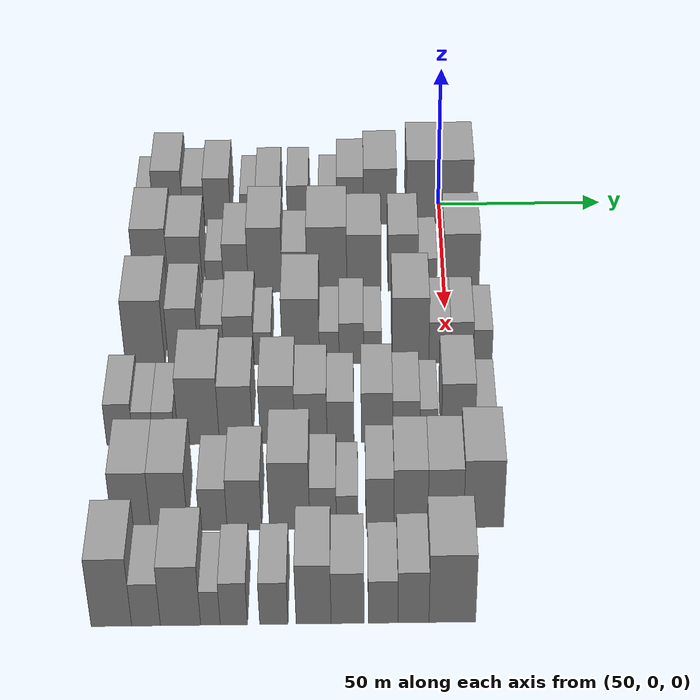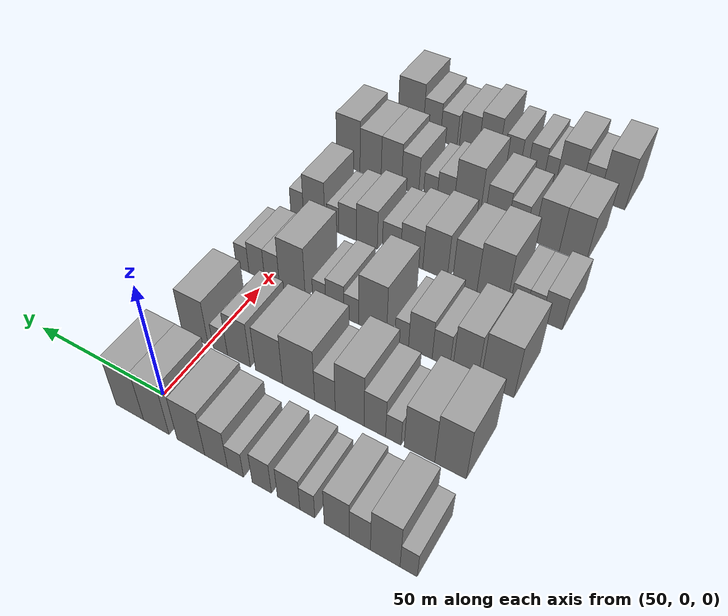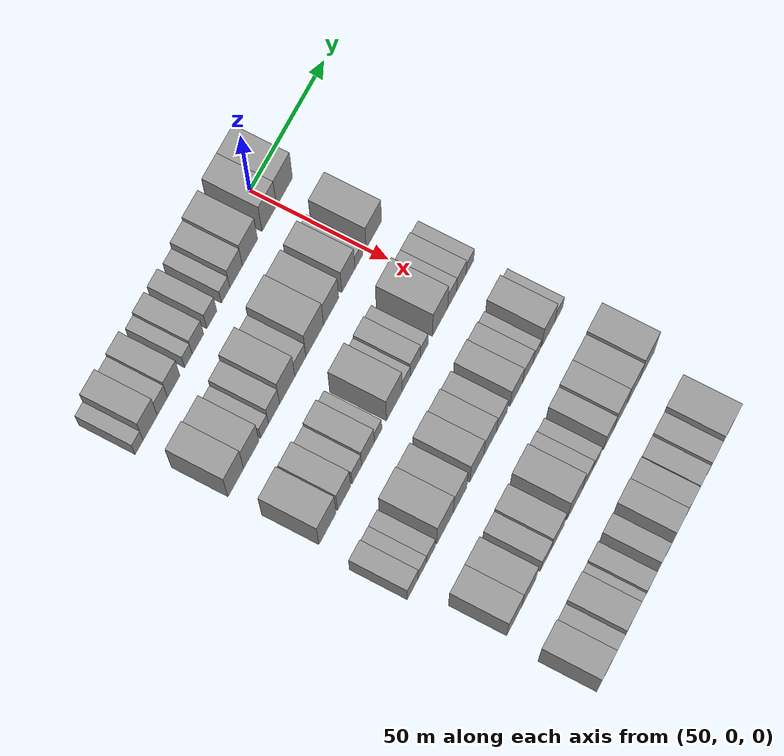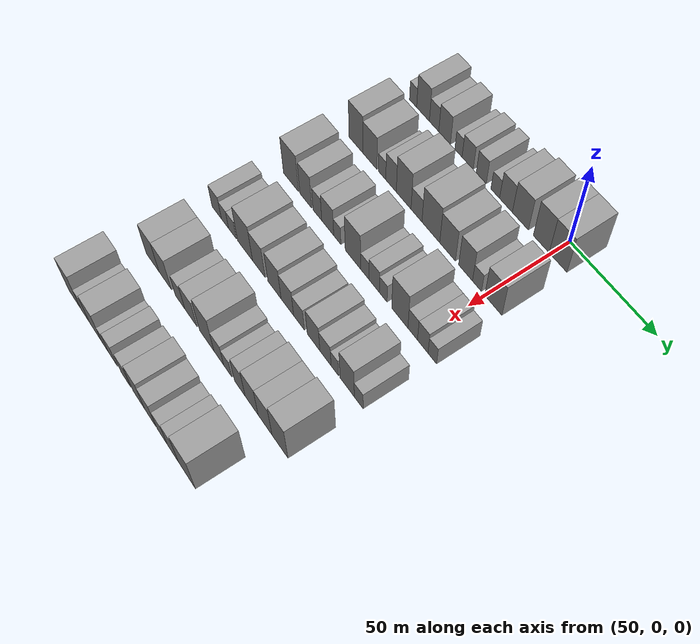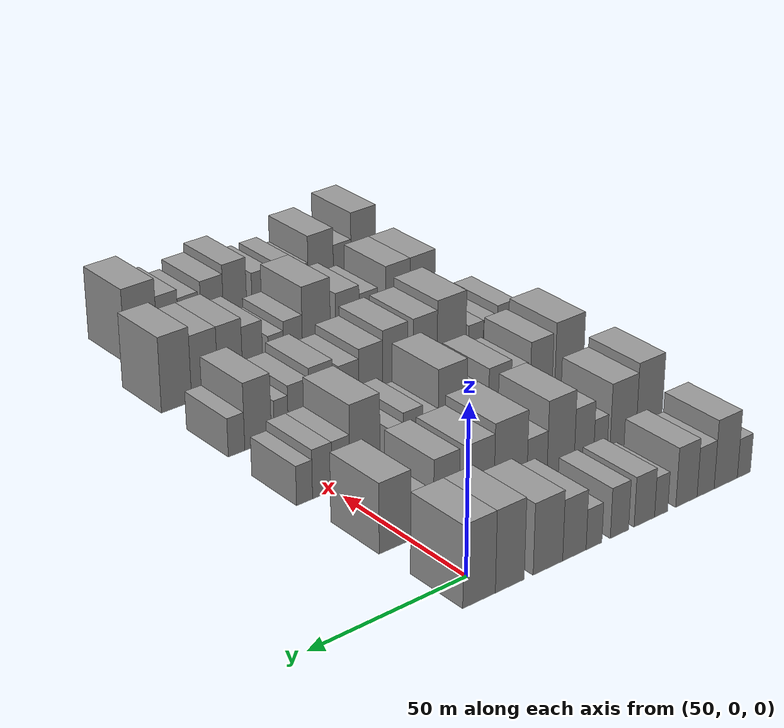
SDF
<sdf version="1.6">
 <world name="default">
  <model name="building_49">
   <static>1</static>
   <pose>50.0000 -90.0845 0 0.000000 0.000000 0.000000</pose>
   <link name="link">
    <pose>0 0 6.00 0 0 0</pose>
    <collision name="collision"><geometry><box><size>20.0000 5.1245 12.0000</size></box></geometry></collision>
    <visual name="visual">
     <cast_shadows>0</cast_shadows>
     <geometry><box><size>20.0000 5.1245 12.0000</size></box></geometry>
     <material>
      <script>
       <uri>model://grey_wall/materials/scripts</uri>
       <uri>model://grey_wall/materials/textures</uri>
       <name>vrc/grey_wall</name>
      </script>
     </material>
    </visual>
   </link>
  </model>
  <model name="building_50">
   <static>1</static>
   <pose>50.0000 -83.0336 0 0.000000 0.000000 0.000000</pose>
   <link name="link">
    <pose>0 0 10.50 0 0 0</pose>
    <collision name="collision"><geometry><box><size>20.0000 8.9772 21.0000</size></box></geometry></collision>
    <visual name="visual">
     <cast_shadows>0</cast_shadows>
     <geometry><box><size>20.0000 8.9772 21.0000</size></box></geometry>
     <material>
      <script>
       <uri>model://grey_wall/materials/scripts</uri>
       <uri>model://grey_wall/materials/textures</uri>
       <name>vrc/grey_wall</name>
      </script>
     </material>
    </visual>
   </link>
  </model>
  <model name="building_51">
   <static>1</static>
   <pose>50.0000 -75.2911 0 0.000000 0.000000 0.000000</pose>
   <link name="link">
    <pose>0 0 7.50 0 0 0</pose>
    <collision name="collision"><geometry><box><size>20.0000 6.5078 15.0000</size></box></geometry></collision>
    <visual name="visual">
     <cast_shadows>0</cast_shadows>
     <geometry><box><size>20.0000 6.5078 15.0000</size></box></geometry>
     <material>
      <script>
       <uri>model://grey_wall/materials/scripts</uri>
       <uri>model://grey_wall/materials/textures</uri>
       <name>vrc/grey_wall</name>
      </script>
     </material>
    </visual>
   </link>
  </model>
  <model name="building_52">
   <static>1</static>
   <pose>50.0000 -68.0344 0 0.000000 0.000000 0.000000</pose>
   <link name="link">
    <pose>0 0 9.00 0 0 0</pose>
    <collision name="collision"><geometry><box><size>20.0000 8.0055 18.0000</size></box></geometry></collision>
    <visual name="visual">
     <cast_shadows>0</cast_shadows>
     <geometry><box><size>20.0000 8.0055 18.0000</size></box></geometry>
     <material>
      <script>
       <uri>model://grey_wall/materials/scripts</uri>
       <uri>model://grey_wall/materials/textures</uri>
       <name>vrc/grey_wall</name>
      </script>
     </material>
    </visual>
   </link>
  </model>
  <model name="building_53">
   <static>1</static>
   <pose>50.0000 -58.5989 0 0.000000 0.000000 0.000000</pose>
   <link name="link">
    <pose>0 0 6.00 0 0 0</pose>
    <collision name="collision"><geometry><box><size>20.0000 4.8654 12.0000</size></box></geometry></collision>
    <visual name="visual">
     <cast_shadows>0</cast_shadows>
     <geometry><box><size>20.0000 4.8654 12.0000</size></box></geometry>
     <material>
      <script>
       <uri>model://grey_wall/materials/scripts</uri>
       <uri>model://grey_wall/materials/textures</uri>
       <name>vrc/grey_wall</name>
      </script>
     </material>
    </visual>
   </link>
  </model>
  <model name="building_54">
   <static>1</static>
   <pose>50.0000 -52.4347 0 0.000000 0.000000 0.000000</pose>
   <link name="link">
    <pose>0 0 7.50 0 0 0</pose>
    <collision name="collision"><geometry><box><size>20.0000 7.4630 15.0000</size></box></geometry></collision>
    <visual name="visual">
     <cast_shadows>0</cast_shadows>
     <geometry><box><size>20.0000 7.4630 15.0000</size></box></geometry>
     <material>
      <script>
       <uri>model://grey_wall/materials/scripts</uri>
       <uri>model://grey_wall/materials/textures</uri>
       <name>vrc/grey_wall</name>
      </script>
     </material>
    </visual>
   </link>
  </model>
  <model name="building_55">
   <static>1</static>
   <pose>50.0000 -43.4236 0 0.000000 0.000000 0.000000</pose>
   <link name="link">
    <pose>0 0 7.50 0 0 0</pose>
    <collision name="collision"><geometry><box><size>20.0000 6.5594 15.0000</size></box></geometry></collision>
    <visual name="visual">
     <cast_shadows>0</cast_shadows>
     <geometry><box><size>20.0000 6.5594 15.0000</size></box></geometry>
     <material>
      <script>
       <uri>model://grey_wall/materials/scripts</uri>
       <uri>model://grey_wall/materials/textures</uri>
       <name>vrc/grey_wall</name>
      </script>
     </material>
    </visual>
   </link>
  </model>
  <model name="building_56">
   <static>1</static>
   <pose>50.0000 -34.3570 0 0.000000 0.000000 0.000000</pose>
   <link name="link">
    <pose>0 0 6.00 0 0 0</pose>
    <collision name="collision"><geometry><box><size>20.0000 5.5738 12.0000</size></box></geometry></collision>
    <visual name="visual">
     <cast_shadows>0</cast_shadows>
     <geometry><box><size>20.0000 5.5738 12.0000</size></box></geometry>
     <material>
      <script>
       <uri>model://grey_wall/materials/scripts</uri>
       <uri>model://grey_wall/materials/textures</uri>
       <name>vrc/grey_wall</name>
      </script>
     </material>
    </visual>
   </link>
  </model>
  <model name="building_57">
   <static>1</static>
   <pose>50.0000 -27.4977 0 0.000000 0.000000 0.000000</pose>
   <link name="link">
    <pose>0 0 9.00 0 0 0</pose>
    <collision name="collision"><geometry><box><size>20.0000 8.1449 18.0000</size></box></geometry></collision>
    <visual name="visual">
     <cast_shadows>0</cast_shadows>
     <geometry><box><size>20.0000 8.1449 18.0000</size></box></geometry>
     <material>
      <script>
       <uri>model://grey_wall/materials/scripts</uri>
       <uri>model://grey_wall/materials/textures</uri>
       <name>vrc/grey_wall</name>
      </script>
     </material>
    </visual>
   </link>
  </model>
  <model name="building_58">
   <static>1</static>
   <pose>50.0000 -18.3838 0 0.000000 0.000000 0.000000</pose>
   <link name="link">
    <pose>0 0 10.50 0 0 0</pose>
    <collision name="collision"><geometry><box><size>20.0000 10.0829 21.0000</size></box></geometry></collision>
    <visual name="visual">
     <cast_shadows>0</cast_shadows>
     <geometry><box><size>20.0000 10.0829 21.0000</size></box></geometry>
     <material>
      <script>
       <uri>model://grey_wall/materials/scripts</uri>
       <uri>model://grey_wall/materials/textures</uri>
       <name>vrc/grey_wall</name>
      </script>
     </material>
    </visual>
   </link>
  </model>
  <model name="building_59">
   <static>1</static>
   <pose>50.0000 -5.5306 0 0.000000 0.000000 0.000000</pose>
   <link name="link">
    <pose>0 0 12.00 0 0 0</pose>
    <collision name="collision"><geometry><box><size>20.0000 9.6235 24.0000</size></box></geometry></collision>
    <visual name="visual">
     <cast_shadows>0</cast_shadows>
     <geometry><box><size>20.0000 9.6235 24.0000</size></box></geometry>
     <material>
      <script>
       <uri>model://grey_wall/materials/scripts</uri>
       <uri>model://grey_wall/materials/textures</uri>
       <name>vrc/grey_wall</name>
      </script>
     </material>
    </visual>
   </link>
  </model>
  <model name="building_60">
   <static>1</static>
   <pose>50.0000 4.6134 0 0.000000 0.000000 0.000000</pose>
   <link name="link">
    <pose>0 0 12.00 0 0 0</pose>
    <collision name="collision"><geometry><box><size>20.0000 10.6645 24.0000</size></box></geometry></collision>
    <visual name="visual">
     <cast_shadows>0</cast_shadows>
     <geometry><box><size>20.0000 10.6645 24.0000</size></box></geometry>
     <material>
      <script>
       <uri>model://grey_wall/materials/scripts</uri>
       <uri>model://grey_wall/materials/textures</uri>
       <name>vrc/grey_wall</name>
      </script>
     </material>
    </visual>
   </link>
  </model>
  <model name="building_172">
   <static>1</static>
   <pose>82.0000 -85.9453 0 0.000000 0.000000 0.000000</pose>
   <link name="link">
    <pose>0 0 12.00 0 0 0</pose>
    <collision name="collision"><geometry><box><size>20.0000 10.0226 24.0000</size></box></geometry></collision>
    <visual name="visual">
     <cast_shadows>0</cast_shadows>
     <geometry><box><size>20.0000 10.0226 24.0000</size></box></geometry>
     <material>
      <script>
       <uri>model://grey_wall/materials/scripts</uri>
       <uri>model://grey_wall/materials/textures</uri>
       <name>vrc/grey_wall</name>
      </script>
     </material>
    </visual>
   </link>
  </model>
  <model name="building_173">
   <static>1</static>
   <pose>82.0000 -75.9576 0 0.000000 0.000000 0.000000</pose>
   <link name="link">
    <pose>0 0 10.50 0 0 0</pose>
    <collision name="collision"><geometry><box><size>20.0000 9.9529 21.0000</size></box></geometry></collision>
    <visual name="visual">
     <cast_shadows>0</cast_shadows>
     <geometry><box><size>20.0000 9.9529 21.0000</size></box></geometry>
     <material>
      <script>
       <uri>model://grey_wall/materials/scripts</uri>
       <uri>model://grey_wall/materials/textures</uri>
       <name>vrc/grey_wall</name>
      </script>
     </material>
    </visual>
   </link>
  </model>
  <model name="building_174">
   <static>1</static>
   <pose>82.0000 -67.3988 0 0.000000 0.000000 0.000000</pose>
   <link name="link">
    <pose>0 0 6.00 0 0 0</pose>
    <collision name="collision"><geometry><box><size>20.0000 5.1645 12.0000</size></box></geometry></collision>
    <visual name="visual">
     <cast_shadows>0</cast_shadows>
     <geometry><box><size>20.0000 5.1645 12.0000</size></box></geometry>
     <material>
      <script>
       <uri>model://grey_wall/materials/scripts</uri>
       <uri>model://grey_wall/materials/textures</uri>
       <name>vrc/grey_wall</name>
      </script>
     </material>
    </visual>
   </link>
  </model>
  <model name="building_175">
   <static>1</static>
   <pose>82.0000 -61.1639 0 0.000000 0.000000 0.000000</pose>
   <link name="link">
    <pose>0 0 9.00 0 0 0</pose>
    <collision name="collision"><geometry><box><size>20.0000 7.3053 18.0000</size></box></geometry></collision>
    <visual name="visual">
     <cast_shadows>0</cast_shadows>
     <geometry><box><size>20.0000 7.3053 18.0000</size></box></geometry>
     <material>
      <script>
       <uri>model://grey_wall/materials/scripts</uri>
       <uri>model://grey_wall/materials/textures</uri>
       <name>vrc/grey_wall</name>
      </script>
     </material>
    </visual>
   </link>
  </model>
  <model name="building_176">
   <static>1</static>
   <pose>82.0000 -52.5127 0 0.000000 0.000000 0.000000</pose>
   <link name="link">
    <pose>0 0 12.00 0 0 0</pose>
    <collision name="collision"><geometry><box><size>20.0000 9.9972 24.0000</size></box></geometry></collision>
    <visual name="visual">
     <cast_shadows>0</cast_shadows>
     <geometry><box><size>20.0000 9.9972 24.0000</size></box></geometry>
     <material>
      <script>
       <uri>model://grey_wall/materials/scripts</uri>
       <uri>model://grey_wall/materials/textures</uri>
       <name>vrc/grey_wall</name>
      </script>
     </material>
    </visual>
   </link>
  </model>
  <model name="building_177">
   <static>1</static>
   <pose>82.0000 -43.8719 0 0.000000 0.000000 0.000000</pose>
   <link name="link">
    <pose>0 0 7.50 0 0 0</pose>
    <collision name="collision"><geometry><box><size>20.0000 7.2842 15.0000</size></box></geometry></collision>
    <visual name="visual">
     <cast_shadows>0</cast_shadows>
     <geometry><box><size>20.0000 7.2842 15.0000</size></box></geometry>
     <material>
      <script>
       <uri>model://grey_wall/materials/scripts</uri>
       <uri>model://grey_wall/materials/textures</uri>
       <name>vrc/grey_wall</name>
      </script>
     </material>
    </visual>
   </link>
  </model>
  <model name="building_178">
   <static>1</static>
   <pose>82.0000 -34.3937 0 0.000000 0.000000 0.000000</pose>
   <link name="link">
    <pose>0 0 12.00 0 0 0</pose>
    <collision name="collision"><geometry><box><size>20.0000 11.6722 24.0000</size></box></geometry></collision>
    <visual name="visual">
     <cast_shadows>0</cast_shadows>
     <geometry><box><size>20.0000 11.6722 24.0000</size></box></geometry>
     <material>
      <script>
       <uri>model://grey_wall/materials/scripts</uri>
       <uri>model://grey_wall/materials/textures</uri>
       <name>vrc/grey_wall</name>
      </script>
     </material>
    </visual>
   </link>
  </model>
  <model name="building_179">
   <static>1</static>
   <pose>82.0000 -23.4996 0 0.000000 0.000000 0.000000</pose>
   <link name="link">
    <pose>0 0 10.50 0 0 0</pose>
    <collision name="collision"><geometry><box><size>20.0000 10.1159 21.0000</size></box></geometry></collision>
    <visual name="visual">
     <cast_shadows>0</cast_shadows>
     <geometry><box><size>20.0000 10.1159 21.0000</size></box></geometry>
     <material>
      <script>
       <uri>model://grey_wall/materials/scripts</uri>
       <uri>model://grey_wall/materials/textures</uri>
       <name>vrc/grey_wall</name>
      </script>
     </material>
    </visual>
   </link>
  </model>
  <model name="building_180">
   <static>1</static>
   <pose>82.0000 -12.0725 0 0.000000 0.000000 0.000000</pose>
   <link name="link">
    <pose>0 0 10.50 0 0 0</pose>
    <collision name="collision"><geometry><box><size>20.0000 8.7382 21.0000</size></box></geometry></collision>
    <visual name="visual">
     <cast_shadows>0</cast_shadows>
     <geometry><box><size>20.0000 8.7382 21.0000</size></box></geometry>
     <material>
      <script>
       <uri>model://grey_wall/materials/scripts</uri>
       <uri>model://grey_wall/materials/textures</uri>
       <name>vrc/grey_wall</name>
      </script>
     </material>
    </visual>
   </link>
  </model>
  <model name="building_181">
   <static>1</static>
   <pose>82.0000 -4.9168 0 0.000000 0.000000 0.000000</pose>
   <link name="link">
    <pose>0 0 6.00 0 0 0</pose>
    <collision name="collision"><geometry><box><size>20.0000 5.5732 12.0000</size></box></geometry></collision>
    <visual name="visual">
     <cast_shadows>0</cast_shadows>
     <geometry><box><size>20.0000 5.5732 12.0000</size></box></geometry>
     <material>
      <script>
       <uri>model://grey_wall/materials/scripts</uri>
       <uri>model://grey_wall/materials/textures</uri>
       <name>vrc/grey_wall</name>
      </script>
     </material>
    </visual>
   </link>
  </model>
  <model name="building_182">
   <static>1</static>
   <pose>82.0000 5.0998 0 0.000000 0.000000 0.000000</pose>
   <link name="link">
    <pose>0 0 10.50 0 0 0</pose>
    <collision name="collision"><geometry><box><size>20.0000 10.4600 21.0000</size></box></geometry></collision>
    <visual name="visual">
     <cast_shadows>0</cast_shadows>
     <geometry><box><size>20.0000 10.4600 21.0000</size></box></geometry>
     <material>
      <script>
       <uri>model://grey_wall/materials/scripts</uri>
       <uri>model://grey_wall/materials/textures</uri>
       <name>vrc/grey_wall</name>
      </script>
     </material>
    </visual>
   </link>
  </model>
  <model name="building_284">
   <static>1</static>
   <pose>114.0000 -85.5529 0 0.000000 0.000000 0.000000</pose>
   <link name="link">
    <pose>0 0 12.00 0 0 0</pose>
    <collision name="collision"><geometry><box><size>20.0000 11.1342 24.0000</size></box></geometry></collision>
    <visual name="visual">
     <cast_shadows>0</cast_shadows>
     <geometry><box><size>20.0000 11.1342 24.0000</size></box></geometry>
     <material>
      <script>
       <uri>model://grey_wall/materials/scripts</uri>
       <uri>model://grey_wall/materials/textures</uri>
       <name>vrc/grey_wall</name>
      </script>
     </material>
    </visual>
   </link>
  </model>
  <model name="building_285">
   <static>1</static>
   <pose>114.0000 -74.7078 0 0.000000 0.000000 0.000000</pose>
   <link name="link">
    <pose>0 0 10.50 0 0 0</pose>
    <collision name="collision"><geometry><box><size>20.0000 8.5561 21.0000</size></box></geometry></collision>
    <visual name="visual">
     <cast_shadows>0</cast_shadows>
     <geometry><box><size>20.0000 8.5561 21.0000</size></box></geometry>
     <material>
      <script>
       <uri>model://grey_wall/materials/scripts</uri>
       <uri>model://grey_wall/materials/textures</uri>
       <name>vrc/grey_wall</name>
      </script>
     </material>
    </visual>
   </link>
  </model>
  <model name="building_286">
   <static>1</static>
   <pose>114.0000 -66.3205 0 0.000000 0.000000 0.000000</pose>
   <link name="link">
    <pose>0 0 7.50 0 0 0</pose>
    <collision name="collision"><geometry><box><size>20.0000 6.2184 15.0000</size></box></geometry></collision>
    <visual name="visual">
     <cast_shadows>0</cast_shadows>
     <geometry><box><size>20.0000 6.2184 15.0000</size></box></geometry>
     <material>
      <script>
       <uri>model://grey_wall/materials/scripts</uri>
       <uri>model://grey_wall/materials/textures</uri>
       <name>vrc/grey_wall</name>
      </script>
     </material>
    </visual>
   </link>
  </model>
  <model name="building_287">
   <static>1</static>
   <pose>114.0000 -58.9984 0 0.000000 0.000000 0.000000</pose>
   <link name="link">
    <pose>0 0 9.00 0 0 0</pose>
    <collision name="collision"><geometry><box><size>20.0000 8.4258 18.0000</size></box></geometry></collision>
    <visual name="visual">
     <cast_shadows>0</cast_shadows>
     <geometry><box><size>20.0000 8.4258 18.0000</size></box></geometry>
     <material>
      <script>
       <uri>model://grey_wall/materials/scripts</uri>
       <uri>model://grey_wall/materials/textures</uri>
       <name>vrc/grey_wall</name>
      </script>
     </material>
    </visual>
   </link>
  </model>
  <model name="building_288">
   <static>1</static>
   <pose>114.0000 -52.2848 0 0.000000 0.000000 0.000000</pose>
   <link name="link">
    <pose>0 0 6.00 0 0 0</pose>
    <collision name="collision"><geometry><box><size>20.0000 5.0014 12.0000</size></box></geometry></collision>
    <visual name="visual">
     <cast_shadows>0</cast_shadows>
     <geometry><box><size>20.0000 5.0014 12.0000</size></box></geometry>
     <material>
      <script>
       <uri>model://grey_wall/materials/scripts</uri>
       <uri>model://grey_wall/materials/textures</uri>
       <name>vrc/grey_wall</name>
      </script>
     </material>
    </visual>
   </link>
  </model>
  <model name="building_289">
   <static>1</static>
   <pose>114.0000 -41.5575 0 0.000000 0.000000 0.000000</pose>
   <link name="link">
    <pose>0 0 12.00 0 0 0</pose>
    <collision name="collision"><geometry><box><size>20.0000 10.4532 24.0000</size></box></geometry></collision>
    <visual name="visual">
     <cast_shadows>0</cast_shadows>
     <geometry><box><size>20.0000 10.4532 24.0000</size></box></geometry>
     <material>
      <script>
       <uri>model://grey_wall/materials/scripts</uri>
       <uri>model://grey_wall/materials/textures</uri>
       <name>vrc/grey_wall</name>
      </script>
     </material>
    </visual>
   </link>
  </model>
  <model name="building_290">
   <static>1</static>
   <pose>114.0000 -33.5599 0 0.000000 0.000000 0.000000</pose>
   <link name="link">
    <pose>0 0 6.00 0 0 0</pose>
    <collision name="collision"><geometry><box><size>20.0000 5.5419 12.0000</size></box></geometry></collision>
    <visual name="visual">
     <cast_shadows>0</cast_shadows>
     <geometry><box><size>20.0000 5.5419 12.0000</size></box></geometry>
     <material>
      <script>
       <uri>model://grey_wall/materials/scripts</uri>
       <uri>model://grey_wall/materials/textures</uri>
       <name>vrc/grey_wall</name>
      </script>
     </material>
    </visual>
   </link>
  </model>
  <model name="building_291">
   <static>1</static>
   <pose>114.0000 -27.3322 0 0.000000 0.000000 0.000000</pose>
   <link name="link">
    <pose>0 0 7.50 0 0 0</pose>
    <collision name="collision"><geometry><box><size>20.0000 6.9136 15.0000</size></box></geometry></collision>
    <visual name="visual">
     <cast_shadows>0</cast_shadows>
     <geometry><box><size>20.0000 6.9136 15.0000</size></box></geometry>
     <material>
      <script>
       <uri>model://grey_wall/materials/scripts</uri>
       <uri>model://grey_wall/materials/textures</uri>
       <name>vrc/grey_wall</name>
      </script>
     </material>
    </visual>
   </link>
  </model>
  <model name="building_292">
   <static>1</static>
   <pose>114.0000 -21.3491 0 0.000000 0.000000 0.000000</pose>
   <link name="link">
    <pose>0 0 6.00 0 0 0</pose>
    <collision name="collision"><geometry><box><size>20.0000 5.0526 12.0000</size></box></geometry></collision>
    <visual name="visual">
     <cast_shadows>0</cast_shadows>
     <geometry><box><size>20.0000 5.0526 12.0000</size></box></geometry>
     <material>
      <script>
       <uri>model://grey_wall/materials/scripts</uri>
       <uri>model://grey_wall/materials/textures</uri>
       <name>vrc/grey_wall</name>
      </script>
     </material>
    </visual>
   </link>
  </model>
  <model name="building_293">
   <static>1</static>
   <pose>114.0000 -10.6380 0 0.000000 0.000000 0.000000</pose>
   <link name="link">
    <pose>0 0 12.00 0 0 0</pose>
    <collision name="collision"><geometry><box><size>20.0000 10.3697 24.0000</size></box></geometry></collision>
    <visual name="visual">
     <cast_shadows>0</cast_shadows>
     <geometry><box><size>20.0000 10.3697 24.0000</size></box></geometry>
     <material>
      <script>
       <uri>model://grey_wall/materials/scripts</uri>
       <uri>model://grey_wall/materials/textures</uri>
       <name>vrc/grey_wall</name>
      </script>
     </material>
    </visual>
   </link>
  </model>
  <model name="building_294">
   <static>1</static>
   <pose>114.0000 -2.4286 0 0.000000 0.000000 0.000000</pose>
   <link name="link">
    <pose>0 0 7.50 0 0 0</pose>
    <collision name="collision"><geometry><box><size>20.0000 6.0491 15.0000</size></box></geometry></collision>
    <visual name="visual">
     <cast_shadows>0</cast_shadows>
     <geometry><box><size>20.0000 6.0491 15.0000</size></box></geometry>
     <material>
      <script>
       <uri>model://grey_wall/materials/scripts</uri>
       <uri>model://grey_wall/materials/textures</uri>
       <name>vrc/grey_wall</name>
      </script>
     </material>
    </visual>
   </link>
  </model>
  <model name="building_295">
   <static>1</static>
   <pose>114.0000 3.8559 0 0.000000 0.000000 0.000000</pose>
   <link name="link">
    <pose>0 0 7.50 0 0 0</pose>
    <collision name="collision"><geometry><box><size>20.0000 6.5199 15.0000</size></box></geometry></collision>
    <visual name="visual">
     <cast_shadows>0</cast_shadows>
     <geometry><box><size>20.0000 6.5199 15.0000</size></box></geometry>
     <material>
      <script>
       <uri>model://grey_wall/materials/scripts</uri>
       <uri>model://grey_wall/materials/textures</uri>
       <name>vrc/grey_wall</name>
      </script>
     </material>
    </visual>
   </link>
  </model>
  <model name="building_296">
   <static>1</static>
   <pose>114.0000 9.7664 0 0.000000 0.000000 0.000000</pose>
   <link name="link">
    <pose>0 0 6.00 0 0 0</pose>
    <collision name="collision"><geometry><box><size>20.0000 5.3011 12.0000</size></box></geometry></collision>
    <visual name="visual">
     <cast_shadows>0</cast_shadows>
     <geometry><box><size>20.0000 5.3011 12.0000</size></box></geometry>
     <material>
      <script>
       <uri>model://grey_wall/materials/scripts</uri>
       <uri>model://grey_wall/materials/textures</uri>
       <name>vrc/grey_wall</name>
      </script>
     </material>
    </visual>
   </link>
  </model>
  <model name="building_401">
   <static>1</static>
   <pose>146.0000 -90.0124 0 0.000000 0.000000 0.000000</pose>
   <link name="link">
    <pose>0 0 7.50 0 0 0</pose>
    <collision name="collision"><geometry><box><size>20.0000 7.1685 15.0000</size></box></geometry></collision>
    <visual name="visual">
     <cast_shadows>0</cast_shadows>
     <geometry><box><size>20.0000 7.1685 15.0000</size></box></geometry>
     <material>
      <script>
       <uri>model://grey_wall/materials/scripts</uri>
       <uri>model://grey_wall/materials/textures</uri>
       <name>vrc/grey_wall</name>
      </script>
     </material>
    </visual>
   </link>
  </model>
  <model name="building_402">
   <static>1</static>
   <pose>146.0000 -83.7031 0 0.000000 0.000000 0.000000</pose>
   <link name="link">
    <pose>0 0 6.00 0 0 0</pose>
    <collision name="collision"><geometry><box><size>20.0000 5.4501 12.0000</size></box></geometry></collision>
    <visual name="visual">
     <cast_shadows>0</cast_shadows>
     <geometry><box><size>20.0000 5.4501 12.0000</size></box></geometry>
     <material>
      <script>
       <uri>model://grey_wall/materials/scripts</uri>
       <uri>model://grey_wall/materials/textures</uri>
       <name>vrc/grey_wall</name>
      </script>
     </material>
    </visual>
   </link>
  </model>
  <model name="building_403">
   <static>1</static>
   <pose>146.0000 -78.0756 0 0.000000 0.000000 0.000000</pose>
   <link name="link">
    <pose>0 0 6.00 0 0 0</pose>
    <collision name="collision"><geometry><box><size>20.0000 5.8050 12.0000</size></box></geometry></collision>
    <visual name="visual">
     <cast_shadows>0</cast_shadows>
     <geometry><box><size>20.0000 5.8050 12.0000</size></box></geometry>
     <material>
      <script>
       <uri>model://grey_wall/materials/scripts</uri>
       <uri>model://grey_wall/materials/textures</uri>
       <name>vrc/grey_wall</name>
      </script>
     </material>
    </visual>
   </link>
  </model>
  <model name="building_404">
   <static>1</static>
   <pose>146.0000 -68.6565 0 0.000000 0.000000 0.000000</pose>
   <link name="link">
    <pose>0 0 12.00 0 0 0</pose>
    <collision name="collision"><geometry><box><size>20.0000 11.0331 24.0000</size></box></geometry></collision>
    <visual name="visual">
     <cast_shadows>0</cast_shadows>
     <geometry><box><size>20.0000 11.0331 24.0000</size></box></geometry>
     <material>
      <script>
       <uri>model://grey_wall/materials/scripts</uri>
       <uri>model://grey_wall/materials/textures</uri>
       <name>vrc/grey_wall</name>
      </script>
     </material>
    </visual>
   </link>
  </model>
  <model name="building_405">
   <static>1</static>
   <pose>146.0000 -58.5982 0 0.000000 0.000000 0.000000</pose>
   <link name="link">
    <pose>0 0 10.50 0 0 0</pose>
    <collision name="collision"><geometry><box><size>20.0000 9.0837 21.0000</size></box></geometry></collision>
    <visual name="visual">
     <cast_shadows>0</cast_shadows>
     <geometry><box><size>20.0000 9.0837 21.0000</size></box></geometry>
     <material>
      <script>
       <uri>model://grey_wall/materials/scripts</uri>
       <uri>model://grey_wall/materials/textures</uri>
       <name>vrc/grey_wall</name>
      </script>
     </material>
    </visual>
   </link>
  </model>
  <model name="building_406">
   <static>1</static>
   <pose>146.0000 -47.3877 0 0.000000 0.000000 0.000000</pose>
   <link name="link">
    <pose>0 0 10.50 0 0 0</pose>
    <collision name="collision"><geometry><box><size>20.0000 9.3373 21.0000</size></box></geometry></collision>
    <visual name="visual">
     <cast_shadows>0</cast_shadows>
     <geometry><box><size>20.0000 9.3373 21.0000</size></box></geometry>
     <material>
      <script>
       <uri>model://grey_wall/materials/scripts</uri>
       <uri>model://grey_wall/materials/textures</uri>
       <name>vrc/grey_wall</name>
      </script>
     </material>
    </visual>
   </link>
  </model>
  <model name="building_407">
   <static>1</static>
   <pose>146.0000 -38.3652 0 0.000000 0.000000 0.000000</pose>
   <link name="link">
    <pose>0 0 9.00 0 0 0</pose>
    <collision name="collision"><geometry><box><size>20.0000 8.7076 18.0000</size></box></geometry></collision>
    <visual name="visual">
     <cast_shadows>0</cast_shadows>
     <geometry><box><size>20.0000 8.7076 18.0000</size></box></geometry>
     <material>
      <script>
       <uri>model://grey_wall/materials/scripts</uri>
       <uri>model://grey_wall/materials/textures</uri>
       <name>vrc/grey_wall</name>
      </script>
     </material>
    </visual>
   </link>
  </model>
  <model name="building_408">
   <static>1</static>
   <pose>146.0000 -30.3760 0 0.000000 0.000000 0.000000</pose>
   <link name="link">
    <pose>0 0 7.50 0 0 0</pose>
    <collision name="collision"><geometry><box><size>20.0000 7.2709 15.0000</size></box></geometry></collision>
    <visual name="visual">
     <cast_shadows>0</cast_shadows>
     <geometry><box><size>20.0000 7.2709 15.0000</size></box></geometry>
     <material>
      <script>
       <uri>model://grey_wall/materials/scripts</uri>
       <uri>model://grey_wall/materials/textures</uri>
       <name>vrc/grey_wall</name>
      </script>
     </material>
    </visual>
   </link>
  </model>
  <model name="building_409">
   <static>1</static>
   <pose>146.0000 -20.5138 0 0.000000 0.000000 0.000000</pose>
   <link name="link">
    <pose>0 0 9.00 0 0 0</pose>
    <collision name="collision"><geometry><box><size>20.0000 8.4535 18.0000</size></box></geometry></collision>
    <visual name="visual">
     <cast_shadows>0</cast_shadows>
     <geometry><box><size>20.0000 8.4535 18.0000</size></box></geometry>
     <material>
      <script>
       <uri>model://grey_wall/materials/scripts</uri>
       <uri>model://grey_wall/materials/textures</uri>
       <name>vrc/grey_wall</name>
      </script>
     </material>
    </visual>
   </link>
  </model>
  <model name="building_410">
   <static>1</static>
   <pose>146.0000 -12.6102 0 0.000000 0.000000 0.000000</pose>
   <link name="link">
    <pose>0 0 7.50 0 0 0</pose>
    <collision name="collision"><geometry><box><size>20.0000 7.3537 15.0000</size></box></geometry></collision>
    <visual name="visual">
     <cast_shadows>0</cast_shadows>
     <geometry><box><size>20.0000 7.3537 15.0000</size></box></geometry>
     <material>
      <script>
       <uri>model://grey_wall/materials/scripts</uri>
       <uri>model://grey_wall/materials/textures</uri>
       <name>vrc/grey_wall</name>
      </script>
     </material>
    </visual>
   </link>
  </model>
  <model name="building_411">
   <static>1</static>
   <pose>146.0000 -6.5187 0 0.000000 0.000000 0.000000</pose>
   <link name="link">
    <pose>0 0 6.00 0 0 0</pose>
    <collision name="collision"><geometry><box><size>20.0000 4.8294 12.0000</size></box></geometry></collision>
    <visual name="visual">
     <cast_shadows>0</cast_shadows>
     <geometry><box><size>20.0000 4.8294 12.0000</size></box></geometry>
     <material>
      <script>
       <uri>model://grey_wall/materials/scripts</uri>
       <uri>model://grey_wall/materials/textures</uri>
       <name>vrc/grey_wall</name>
      </script>
     </material>
    </visual>
   </link>
  </model>
  <model name="building_412">
   <static>1</static>
   <pose>146.0000 1.4426 0 0.000000 0.000000 0.000000</pose>
   <link name="link">
    <pose>0 0 10.50 0 0 0</pose>
    <collision name="collision"><geometry><box><size>20.0000 9.0931 21.0000</size></box></geometry></collision>
    <visual name="visual">
     <cast_shadows>0</cast_shadows>
     <geometry><box><size>20.0000 9.0931 21.0000</size></box></geometry>
     <material>
      <script>
       <uri>model://grey_wall/materials/scripts</uri>
       <uri>model://grey_wall/materials/textures</uri>
       <name>vrc/grey_wall</name>
      </script>
     </material>
    </visual>
   </link>
  </model>
  <model name="building_413">
   <static>1</static>
   <pose>146.0000 8.7749 0 0.000000 0.000000 0.000000</pose>
   <link name="link">
    <pose>0 0 6.00 0 0 0</pose>
    <collision name="collision"><geometry><box><size>20.0000 5.5715 12.0000</size></box></geometry></collision>
    <visual name="visual">
     <cast_shadows>0</cast_shadows>
     <geometry><box><size>20.0000 5.5715 12.0000</size></box></geometry>
     <material>
      <script>
       <uri>model://grey_wall/materials/scripts</uri>
       <uri>model://grey_wall/materials/textures</uri>
       <name>vrc/grey_wall</name>
      </script>
     </material>
    </visual>
   </link>
  </model>
  <model name="building_513">
   <static>1</static>
   <pose>178.0000 -84.3446 0 0.000000 0.000000 0.000000</pose>
   <link name="link">
    <pose>0 0 10.50 0 0 0</pose>
    <collision name="collision"><geometry><box><size>20.0000 9.9184 21.0000</size></box></geometry></collision>
    <visual name="visual">
     <cast_shadows>0</cast_shadows>
     <geometry><box><size>20.0000 9.9184 21.0000</size></box></geometry>
     <material>
      <script>
       <uri>model://grey_wall/materials/scripts</uri>
       <uri>model://grey_wall/materials/textures</uri>
       <name>vrc/grey_wall</name>
      </script>
     </material>
    </visual>
   </link>
  </model>
  <model name="building_514">
   <static>1</static>
   <pose>178.0000 -74.6014 0 0.000000 0.000000 0.000000</pose>
   <link name="link">
    <pose>0 0 10.50 0 0 0</pose>
    <collision name="collision"><geometry><box><size>20.0000 9.5680 21.0000</size></box></geometry></collision>
    <visual name="visual">
     <cast_shadows>0</cast_shadows>
     <geometry><box><size>20.0000 9.5680 21.0000</size></box></geometry>
     <material>
      <script>
       <uri>model://grey_wall/materials/scripts</uri>
       <uri>model://grey_wall/materials/textures</uri>
       <name>vrc/grey_wall</name>
      </script>
     </material>
    </visual>
   </link>
  </model>
  <model name="building_515">
   <static>1</static>
   <pose>178.0000 -63.2300 0 0.000000 0.000000 0.000000</pose>
   <link name="link">
    <pose>0 0 7.50 0 0 0</pose>
    <collision name="collision"><geometry><box><size>20.0000 7.1749 15.0000</size></box></geometry></collision>
    <visual name="visual">
     <cast_shadows>0</cast_shadows>
     <geometry><box><size>20.0000 7.1749 15.0000</size></box></geometry>
     <material>
      <script>
       <uri>model://grey_wall/materials/scripts</uri>
       <uri>model://grey_wall/materials/textures</uri>
       <name>vrc/grey_wall</name>
      </script>
     </material>
    </visual>
   </link>
  </model>
  <model name="building_516">
   <static>1</static>
   <pose>178.0000 -55.1770 0 0.000000 0.000000 0.000000</pose>
   <link name="link">
    <pose>0 0 9.00 0 0 0</pose>
    <collision name="collision"><geometry><box><size>20.0000 8.9311 18.0000</size></box></geometry></collision>
    <visual name="visual">
     <cast_shadows>0</cast_shadows>
     <geometry><box><size>20.0000 8.9311 18.0000</size></box></geometry>
     <material>
      <script>
       <uri>model://grey_wall/materials/scripts</uri>
       <uri>model://grey_wall/materials/textures</uri>
       <name>vrc/grey_wall</name>
      </script>
     </material>
    </visual>
   </link>
  </model>
  <model name="building_517">
   <static>1</static>
   <pose>178.0000 -43.4954 0 0.000000 0.000000 0.000000</pose>
   <link name="link">
    <pose>0 0 12.00 0 0 0</pose>
    <collision name="collision"><geometry><box><size>20.0000 10.4322 24.0000</size></box></geometry></collision>
    <visual name="visual">
     <cast_shadows>0</cast_shadows>
     <geometry><box><size>20.0000 10.4322 24.0000</size></box></geometry>
     <material>
      <script>
       <uri>model://grey_wall/materials/scripts</uri>
       <uri>model://grey_wall/materials/textures</uri>
       <name>vrc/grey_wall</name>
      </script>
     </material>
    </visual>
   </link>
  </model>
  <model name="building_518">
   <static>1</static>
   <pose>178.0000 -34.8430 0 0.000000 0.000000 0.000000</pose>
   <link name="link">
    <pose>0 0 7.50 0 0 0</pose>
    <collision name="collision"><geometry><box><size>20.0000 6.8725 15.0000</size></box></geometry></collision>
    <visual name="visual">
     <cast_shadows>0</cast_shadows>
     <geometry><box><size>20.0000 6.8725 15.0000</size></box></geometry>
     <material>
      <script>
       <uri>model://grey_wall/materials/scripts</uri>
       <uri>model://grey_wall/materials/textures</uri>
       <name>vrc/grey_wall</name>
      </script>
     </material>
    </visual>
   </link>
  </model>
  <model name="building_519">
   <static>1</static>
   <pose>178.0000 -28.6010 0 0.000000 0.000000 0.000000</pose>
   <link name="link">
    <pose>0 0 6.00 0 0 0</pose>
    <collision name="collision"><geometry><box><size>20.0000 5.6114 12.0000</size></box></geometry></collision>
    <visual name="visual">
     <cast_shadows>0</cast_shadows>
     <geometry><box><size>20.0000 5.6114 12.0000</size></box></geometry>
     <material>
      <script>
       <uri>model://grey_wall/materials/scripts</uri>
       <uri>model://grey_wall/materials/textures</uri>
       <name>vrc/grey_wall</name>
      </script>
     </material>
    </visual>
   </link>
  </model>
  <model name="building_520">
   <static>1</static>
   <pose>178.0000 -20.1643 0 0.000000 0.000000 0.000000</pose>
   <link name="link">
    <pose>0 0 9.00 0 0 0</pose>
    <collision name="collision"><geometry><box><size>20.0000 7.2619 18.0000</size></box></geometry></collision>
    <visual name="visual">
     <cast_shadows>0</cast_shadows>
     <geometry><box><size>20.0000 7.2619 18.0000</size></box></geometry>
     <material>
      <script>
       <uri>model://grey_wall/materials/scripts</uri>
       <uri>model://grey_wall/materials/textures</uri>
       <name>vrc/grey_wall</name>
      </script>
     </material>
    </visual>
   </link>
  </model>
  <model name="building_521">
   <static>1</static>
   <pose>178.0000 -12.1343 0 0.000000 0.000000 0.000000</pose>
   <link name="link">
    <pose>0 0 10.50 0 0 0</pose>
    <collision name="collision"><geometry><box><size>20.0000 8.7981 21.0000</size></box></geometry></collision>
    <visual name="visual">
     <cast_shadows>0</cast_shadows>
     <geometry><box><size>20.0000 8.7981 21.0000</size></box></geometry>
     <material>
      <script>
       <uri>model://grey_wall/materials/scripts</uri>
       <uri>model://grey_wall/materials/textures</uri>
       <name>vrc/grey_wall</name>
      </script>
     </material>
    </visual>
   </link>
  </model>
  <model name="building_522">
   <static>1</static>
   <pose>178.0000 -3.1275 0 0.000000 0.000000 0.000000</pose>
   <link name="link">
    <pose>0 0 10.50 0 0 0</pose>
    <collision name="collision"><geometry><box><size>20.0000 9.2156 21.0000</size></box></geometry></collision>
    <visual name="visual">
     <cast_shadows>0</cast_shadows>
     <geometry><box><size>20.0000 9.2156 21.0000</size></box></geometry>
     <material>
      <script>
       <uri>model://grey_wall/materials/scripts</uri>
       <uri>model://grey_wall/materials/textures</uri>
       <name>vrc/grey_wall</name>
      </script>
     </material>
    </visual>
   </link>
  </model>
  <model name="building_523">
   <static>1</static>
   <pose>178.0000 6.6627 0 0.000000 0.000000 0.000000</pose>
   <link name="link">
    <pose>0 0 12.00 0 0 0</pose>
    <collision name="collision"><geometry><box><size>20.0000 10.3648 24.0000</size></box></geometry></collision>
    <visual name="visual">
     <cast_shadows>0</cast_shadows>
     <geometry><box><size>20.0000 10.3648 24.0000</size></box></geometry>
     <material>
      <script>
       <uri>model://grey_wall/materials/scripts</uri>
       <uri>model://grey_wall/materials/textures</uri>
       <name>vrc/grey_wall</name>
      </script>
     </material>
    </visual>
   </link>
  </model>
  <model name="building_640">
   <static>1</static>
   <pose>210.0000 -86.8167 0 0.000000 0.000000 0.000000</pose>
   <link name="link">
    <pose>0 0 12.00 0 0 0</pose>
    <collision name="collision"><geometry><box><size>20.0000 9.9776 24.0000</size></box></geometry></collision>
    <visual name="visual">
     <cast_shadows>0</cast_shadows>
     <geometry><box><size>20.0000 9.9776 24.0000</size></box></geometry>
     <material>
      <script>
       <uri>model://grey_wall/materials/scripts</uri>
       <uri>model://grey_wall/materials/textures</uri>
       <name>vrc/grey_wall</name>
      </script>
     </material>
    </visual>
   </link>
  </model>
  <model name="building_641">
   <static>1</static>
   <pose>210.0000 -78.2993 0 0.000000 0.000000 0.000000</pose>
   <link name="link">
    <pose>0 0 7.50 0 0 0</pose>
    <collision name="collision"><geometry><box><size>20.0000 7.0573 15.0000</size></box></geometry></collision>
    <visual name="visual">
     <cast_shadows>0</cast_shadows>
     <geometry><box><size>20.0000 7.0573 15.0000</size></box></geometry>
     <material>
      <script>
       <uri>model://grey_wall/materials/scripts</uri>
       <uri>model://grey_wall/materials/textures</uri>
       <name>vrc/grey_wall</name>
      </script>
     </material>
    </visual>
   </link>
  </model>
  <model name="building_642">
   <static>1</static>
   <pose>210.0000 -69.8092 0 0.000000 0.000000 0.000000</pose>
   <link name="link">
    <pose>0 0 10.50 0 0 0</pose>
    <collision name="collision"><geometry><box><size>20.0000 9.9227 21.0000</size></box></geometry></collision>
    <visual name="visual">
     <cast_shadows>0</cast_shadows>
     <geometry><box><size>20.0000 9.9227 21.0000</size></box></geometry>
     <material>
      <script>
       <uri>model://grey_wall/materials/scripts</uri>
       <uri>model://grey_wall/materials/textures</uri>
       <name>vrc/grey_wall</name>
      </script>
     </material>
    </visual>
   </link>
  </model>
  <model name="building_643">
   <static>1</static>
   <pose>210.0000 -62.4353 0 0.000000 0.000000 0.000000</pose>
   <link name="link">
    <pose>0 0 6.00 0 0 0</pose>
    <collision name="collision"><geometry><box><size>20.0000 4.8252 12.0000</size></box></geometry></collision>
    <visual name="visual">
     <cast_shadows>0</cast_shadows>
     <geometry><box><size>20.0000 4.8252 12.0000</size></box></geometry>
     <material>
      <script>
       <uri>model://grey_wall/materials/scripts</uri>
       <uri>model://grey_wall/materials/textures</uri>
       <name>vrc/grey_wall</name>
      </script>
     </material>
    </visual>
   </link>
  </model>
  <model name="building_644">
   <static>1</static>
   <pose>210.0000 -56.6483 0 0.000000 0.000000 0.000000</pose>
   <link name="link">
    <pose>0 0 7.50 0 0 0</pose>
    <collision name="collision"><geometry><box><size>20.0000 6.7488 15.0000</size></box></geometry></collision>
    <visual name="visual">
     <cast_shadows>0</cast_shadows>
     <geometry><box><size>20.0000 6.7488 15.0000</size></box></geometry>
     <material>
      <script>
       <uri>model://grey_wall/materials/scripts</uri>
       <uri>model://grey_wall/materials/textures</uri>
       <name>vrc/grey_wall</name>
      </script>
     </material>
    </visual>
   </link>
  </model>
  <model name="building_645">
   <static>1</static>
   <pose>210.0000 -46.7862 0 0.000000 0.000000 0.000000</pose>
   <link name="link">
    <pose>0 0 7.50 0 0 0</pose>
    <collision name="collision"><geometry><box><size>20.0000 6.9754 15.0000</size></box></geometry></collision>
    <visual name="visual">
     <cast_shadows>0</cast_shadows>
     <geometry><box><size>20.0000 6.9754 15.0000</size></box></geometry>
     <material>
      <script>
       <uri>model://grey_wall/materials/scripts</uri>
       <uri>model://grey_wall/materials/textures</uri>
       <name>vrc/grey_wall</name>
      </script>
     </material>
    </visual>
   </link>
  </model>
  <model name="building_646">
   <static>1</static>
   <pose>210.0000 -36.9699 0 0.000000 0.000000 0.000000</pose>
   <link name="link">
    <pose>0 0 10.50 0 0 0</pose>
    <collision name="collision"><geometry><box><size>20.0000 8.6572 21.0000</size></box></geometry></collision>
    <visual name="visual">
     <cast_shadows>0</cast_shadows>
     <geometry><box><size>20.0000 8.6572 21.0000</size></box></geometry>
     <material>
      <script>
       <uri>model://grey_wall/materials/scripts</uri>
       <uri>model://grey_wall/materials/textures</uri>
       <name>vrc/grey_wall</name>
      </script>
     </material>
    </visual>
   </link>
  </model>
  <model name="building_647">
   <static>1</static>
   <pose>210.0000 -28.5526 0 0.000000 0.000000 0.000000</pose>
   <link name="link">
    <pose>0 0 9.00 0 0 0</pose>
    <collision name="collision"><geometry><box><size>20.0000 8.1773 18.0000</size></box></geometry></collision>
    <visual name="visual">
     <cast_shadows>0</cast_shadows>
     <geometry><box><size>20.0000 8.1773 18.0000</size></box></geometry>
     <material>
      <script>
       <uri>model://grey_wall/materials/scripts</uri>
       <uri>model://grey_wall/materials/textures</uri>
       <name>vrc/grey_wall</name>
      </script>
     </material>
    </visual>
   </link>
  </model>
  <model name="building_648">
   <static>1</static>
   <pose>210.0000 -19.8248 0 0.000000 0.000000 0.000000</pose>
   <link name="link">
    <pose>0 0 7.50 0 0 0</pose>
    <collision name="collision"><geometry><box><size>20.0000 7.2784 15.0000</size></box></geometry></collision>
    <visual name="visual">
     <cast_shadows>0</cast_shadows>
     <geometry><box><size>20.0000 7.2784 15.0000</size></box></geometry>
     <material>
      <script>
       <uri>model://grey_wall/materials/scripts</uri>
       <uri>model://grey_wall/materials/textures</uri>
       <name>vrc/grey_wall</name>
      </script>
     </material>
    </visual>
   </link>
  </model>
  <model name="building_649">
   <static>1</static>
   <pose>210.0000 -12.3349 0 0.000000 0.000000 0.000000</pose>
   <link name="link">
    <pose>0 0 9.00 0 0 0</pose>
    <collision name="collision"><geometry><box><size>20.0000 7.7014 18.0000</size></box></geometry></collision>
    <visual name="visual">
     <cast_shadows>0</cast_shadows>
     <geometry><box><size>20.0000 7.7014 18.0000</size></box></geometry>
     <material>
      <script>
       <uri>model://grey_wall/materials/scripts</uri>
       <uri>model://grey_wall/materials/textures</uri>
       <name>vrc/grey_wall</name>
      </script>
     </material>
    </visual>
   </link>
  </model>
  <model name="building_650">
   <static>1</static>
   <pose>210.0000 -2.7345 0 0.000000 0.000000 0.000000</pose>
   <link name="link">
    <pose>0 0 12.00 0 0 0</pose>
    <collision name="collision"><geometry><box><size>20.0000 11.4993 24.0000</size></box></geometry></collision>
    <visual name="visual">
     <cast_shadows>0</cast_shadows>
     <geometry><box><size>20.0000 11.4993 24.0000</size></box></geometry>
     <material>
      <script>
       <uri>model://grey_wall/materials/scripts</uri>
       <uri>model://grey_wall/materials/textures</uri>
       <name>vrc/grey_wall</name>
      </script>
     </material>
    </visual>
   </link>
  </model>
 </world>
</sdf>
